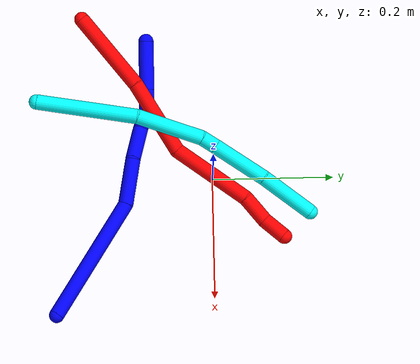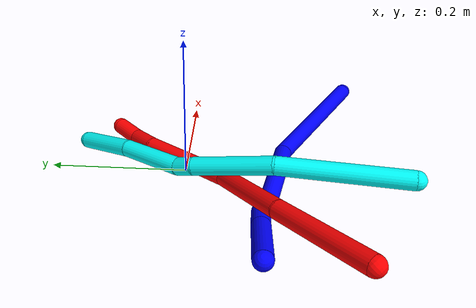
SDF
<sdf version="1.7">
 <world name="default">
  <plugin name="TubeGeneratorPlugin" filename="libtube_generator_plugin.so"/>
  <model name="photoneo_s_sensor">
   <static>1</static>
   <pose>0 0 2 1.57079 1.57079 3.14159</pose>
   <link name="link">
    <inertial><mass>0.1</mass></inertial>
    <sensor name="sensor" type="depth">
     <update_rate>30</update_rate>
     <camera>
      <horizontal_fov>1.22</horizontal_fov>
      <image><width>1920</width><height>1200</height><format>B8G8R8</format></image>
      <clip><near>0.1</near><far>4</far></clip>
      <depth_camera><output>points</output></depth_camera>
     </camera>
     <plugin name="camera_plugin" filename="libgazebo_ros_depth_camera.so">
      <baseline>0.2</baseline>
      <alwaysOn>1</alwaysOn>
      <updateRate>0.0</updateRate>
      <cameraName>camera_ir</cameraName>
      <imageTopicName>/camera/color/image_raw</imageTopicName>
      <cameraInfoTopicName>/camera/color/camera_info</cameraInfoTopicName>
      <depthImageTopicName>/camera/depth/image_raw</depthImageTopicName>
      <depthImageCameraInfoTopicName>/camera/depth/camera_info</depthImageCameraInfoTopicName>
      <pointCloudTopicName>/camera/depth/points</pointCloudTopicName>
      <frameName>fr_optical</frameName>
      <pointCloudCutoff>0.1</pointCloudCutoff>
      <pointCloudCutoffMax>2.0</pointCloudCutoffMax>
      <distortionK1>0</distortionK1>
      <distortionK2>0</distortionK2>
      <distortionK3>0</distortionK3>
      <distortionT1>0</distortionT1>
      <distortionT2>0</distortionT2>
      <CxPrime>0</CxPrime>
      <Cx>0</Cx>
      <Cy>0</Cy>
      <focalLength>0</focalLength>
      <hackBaseline>0</hackBaseline>
     </plugin>
    </sensor>
   </link>
  </model>
  <gravity>0 0 -9.8</gravity>
  <magnetic_field>6e-06 2.3e-05 -4.2e-05</magnetic_field>
  <atmosphere type="adiabatic"/>
  <physics name="default_physics" default="0" type="ode">
   <max_step_size>0.003</max_step_size>
   <real_time_factor>1</real_time_factor>
   <real_time_update_rate>1000</real_time_update_rate>
   <max_contacts>10000</max_contacts>
   <ode>
    <solver>
     <type>quick</type>
     <iters>100</iters>
     <sor>1.3</sor>
     <use_dynamic_moi_rescaling>0</use_dynamic_moi_rescaling>
    </solver>
    <constraints>
     <contact_max_correcting_vel>0</contact_max_correcting_vel>
     <contact_surface_layer>0.001</contact_surface_layer>
     <cfm>0</cfm>
     <erp>0.2</erp>
    </constraints>
   </ode>
  </physics>
  <scene><ambient>0.4 0.4 0.4 1</ambient><background>0.7 0.7 0.7 1</background><shadows>0</shadows></scene>
  <audio><device>default</device></audio>
  <spherical_coordinates>
   <surface_model>EARTH_WGS84</surface_model>
   <latitude_deg>0</latitude_deg>
   <longitude_deg>0</longitude_deg>
   <elevation>0</elevation>
   <heading_deg>0</heading_deg>
  </spherical_coordinates>
  <model name="bin">
   <static>1</static>
   <link name="bottom">
    <collision name="collision-bottom">
     <pose>0 0 -0.01 0 -0 0</pose>
     <geometry><box><size>0.8 0.6 0.02</size></box></geometry>
     <surface>
      <friction><ode><mu>100</mu><mu2>100</mu2></ode></friction>
      <contact><collide_bitmask>65535</collide_bitmask></contact>
     </surface>
    </collision>
   </link>
   <link name="west_wall">
    <collision name="collision-west_wall">
     <pose>-0.41 0 0.1 0 -0 0</pose>
     <geometry><box><size>0.02 0.6 0.2</size></box></geometry>
     <surface>
      <friction><ode><mu>100</mu><mu2>100</mu2></ode></friction>
      <contact><collide_bitmask>65535</collide_bitmask></contact>
     </surface>
    </collision>
   </link>
   <link name="east_wall">
    <collision name="collision-east_wall">
     <pose>0.41 0 0.1 0 -0 0</pose>
     <geometry><box><size>0.02 0.6 0.2</size></box></geometry>
     <surface>
      <friction><ode><mu>100</mu><mu2>100</mu2></ode></friction>
      <contact><collide_bitmask>65535</collide_bitmask></contact>
     </surface>
    </collision>
   </link>
   <link name="south_wall">
    <collision name="collision-south_wall">
     <pose>0 -0.31 0.1 0 -0 0</pose>
     <geometry><box><size>0.8 0.02 0.2</size></box></geometry>
     <surface>
      <friction><ode><mu>100</mu><mu2>100</mu2></ode></friction>
      <contact><collide_bitmask>65535</collide_bitmask></contact>
     </surface>
    </collision>
   </link>
   <link name="north_wall">
    <collision name="collision-north_wall">
     <pose>0 0.31 0.1 0 -0 0</pose>
     <geometry><box><size>0.8 0.02 0.2</size></box></geometry>
     <surface>
      <friction><ode><mu>100</mu><mu2>100</mu2></ode></friction>
      <contact><collide_bitmask>65535</collide_bitmask></contact>
     </surface>
    </collision>
   </link>
  </model>
  <model name="1">
   <static>0</static>
   <link name="1">
    <collision name="collision-cylinder-e_1_1_4">
     <pose>0.029063 -0.004697 0.027217 0.170887 0.810863 0.073492</pose>
     <geometry><cylinder><radius>0.0125</radius><length>0.080186</length></cylinder></geometry>
     <surface>
      <friction><ode><mu>1.16</mu><mu2>1.16</mu2><slip1>0</slip1><slip2>0</slip2></ode></friction>
      <contact><ode><kp>1e+06</kp><kd>1</kd><max_vel>0</max_vel><min_depth>0.001</min_depth></ode></contact>
     </surface>
    </collision>
    <visual name="visual-cylinder-e_1_1_4">
     <pose>0.029063 -0.004697 0.027217 0.170887 0.810863 0.073492</pose>
     <geometry><cylinder><radius>0.0125</radius><length>0.080186</length></cylinder></geometry>
     <material><ambient>0 0 1 1</ambient></material>
    </visual>
    <collision name="collision-cylinder-e_2_4_5">
     <pose>0.072031 -0.011154 0.066682 0.142766 0.84358 0.064149</pose>
     <geometry><cylinder><radius>0.0125</radius><length>0.037228</length></cylinder></geometry>
     <surface>
      <friction><ode><mu>1.16</mu><mu2>1.16</mu2><slip1>0</slip1><slip2>0</slip2></ode></friction>
      <contact><ode><kp>1e+06</kp><kd>1</kd><max_vel>0</max_vel><min_depth>0.001</min_depth></ode></contact>
     </surface>
    </collision>
    <visual name="visual-cylinder-e_2_4_5">
     <pose>0.072031 -0.011154 0.066682 0.142766 0.84358 0.064149</pose>
     <geometry><cylinder><radius>0.0125</radius><length>0.037228</length></cylinder></geometry>
     <material><ambient>0 0 1 1</ambient></material>
    </visual>
    <collision name="collision-cylinder-e_3_5_6">
     <pose>0.097345 -0.00981 0.0874 -0.351387 0.901816 -0.171484</pose>
     <geometry><cylinder><radius>0.0125</radius><length>0.029089</length></cylinder></geometry>
     <surface>
      <friction><ode><mu>1.16</mu><mu2>1.16</mu2><slip1>0</slip1><slip2>0</slip2></ode></friction>
      <contact><ode><kp>1e+06</kp><kd>1</kd><max_vel>0</max_vel><min_depth>0.001</min_depth></ode></contact>
     </surface>
    </collision>
    <visual name="visual-cylinder-e_3_5_6">
     <pose>0.097345 -0.00981 0.0874 -0.351387 0.901816 -0.171484</pose>
     <geometry><cylinder><radius>0.0125</radius><length>0.029089</length></cylinder></geometry>
     <material><ambient>0 0 1 1</ambient></material>
    </visual>
    <collision name="collision-cylinder-e_4_6_7">
     <pose>0.135159 -0.005446 0.105192 -0.13426 1.22851 -0.094761</pose>
     <geometry><cylinder><radius>0.0125</radius><length>0.056061</length></cylinder></geometry>
     <surface>
      <friction><ode><mu>1.16</mu><mu2>1.16</mu2><slip1>0</slip1><slip2>0</slip2></ode></friction>
      <contact><ode><kp>1e+06</kp><kd>1</kd><max_vel>0</max_vel><min_depth>0.001</min_depth></ode></contact>
     </surface>
    </collision>
    <visual name="visual-cylinder-e_4_6_7">
     <pose>0.135159 -0.005446 0.105192 -0.13426 1.22851 -0.094761</pose>
     <geometry><cylinder><radius>0.0125</radius><length>0.056061</length></cylinder></geometry>
     <material><ambient>0 0 1 1</ambient></material>
    </visual>
    <collision name="collision-cylinder-e_5_7_8">
     <pose>0.192784 -0.002941 0.136959 -0.055442 0.946791 -0.028405</pose>
     <geometry><cylinder><radius>0.0125</radius><length>0.076939</length></cylinder></geometry>
     <surface>
      <friction><ode><mu>1.16</mu><mu2>1.16</mu2><slip1>0</slip1><slip2>0</slip2></ode></friction>
      <contact><ode><kp>1e+06</kp><kd>1</kd><max_vel>0</max_vel><min_depth>0.001</min_depth></ode></contact>
     </surface>
    </collision>
    <visual name="visual-cylinder-e_5_7_8">
     <pose>0.192784 -0.002941 0.136959 -0.055442 0.946791 -0.028405</pose>
     <geometry><cylinder><radius>0.0125</radius><length>0.076939</length></cylinder></geometry>
     <material><ambient>0 0 1 1</ambient></material>
    </visual>
    <collision name="collision-cylinder-e_6_8_2">
     <pose>0.321278 0.036975 0.193999 -0.840927 1.08077 -0.524174</pose>
     <geometry><cylinder><radius>0.0125</radius><length>0.220497</length></cylinder></geometry>
     <surface>
      <friction><ode><mu>1.16</mu><mu2>1.16</mu2><slip1>0</slip1><slip2>0</slip2></ode></friction>
      <contact><ode><kp>1e+06</kp><kd>1</kd><max_vel>0</max_vel><min_depth>0.001</min_depth></ode></contact>
     </surface>
    </collision>
    <visual name="visual-cylinder-e_6_8_2">
     <pose>0.321278 0.036975 0.193999 -0.840927 1.08077 -0.524174</pose>
     <geometry><cylinder><radius>0.0125</radius><length>0.220497</length></cylinder></geometry>
     <material><ambient>0 0 1 1</ambient></material>
    </visual>
    <collision name="collision-sphere-2">
     <pose>0.418552 0.075645 0.228597 0 -0 0</pose>
     <geometry><sphere><radius>0.0125</radius></sphere></geometry>
     <surface>
      <friction><ode><mu>1.16</mu><mu2>1.16</mu2><slip1>0</slip1><slip2>0</slip2></ode></friction>
      <contact><ode><kp>1e+06</kp><kd>1</kd><max_vel>0</max_vel><min_depth>0.001</min_depth></ode></contact>
     </surface>
    </collision>
    <visual name="visual-sphere-2">
     <pose>0.418552 0.075645 0.228597 0 -0 0</pose>
     <geometry><sphere><radius>0.0125</radius></sphere></geometry>
     <material><ambient>0 0 1 1</ambient></material>
    </visual>
    <collision name="collision-sphere-4">
     <pose>0.058125 -0.009394 0.054433 0 -0 0</pose>
     <geometry><sphere><radius>0.0125</radius></sphere></geometry>
     <surface>
      <friction><ode><mu>1.16</mu><mu2>1.16</mu2><slip1>0</slip1><slip2>0</slip2></ode></friction>
      <contact><ode><kp>1e+06</kp><kd>1</kd><max_vel>0</max_vel><min_depth>0.001</min_depth></ode></contact>
     </surface>
    </collision>
    <visual name="visual-sphere-4">
     <pose>0.058125 -0.009394 0.054433 0 -0 0</pose>
     <geometry><sphere><radius>0.0125</radius></sphere></geometry>
     <material><ambient>0 0 1 1</ambient></material>
    </visual>
    <collision name="collision-sphere-1">
     <geometry><sphere><radius>0.0125</radius></sphere></geometry>
     <surface>
      <friction><ode><mu>1.16</mu><mu2>1.16</mu2><slip1>0</slip1><slip2>0</slip2></ode></friction>
      <contact><ode><kp>1e+06</kp><kd>1</kd><max_vel>0</max_vel><min_depth>0.001</min_depth></ode></contact>
     </surface>
    </collision>
    <visual name="visual-sphere-1">
     <geometry><sphere><radius>0.0125</radius></sphere></geometry>
     <material><ambient>0 0 1 1</ambient></material>
    </visual>
    <collision name="collision-sphere-8">
     <pose>0.224003 -0.001695 0.159402 0 -0 0</pose>
     <geometry><sphere><radius>0.0125</radius></sphere></geometry>
     <surface>
      <friction><ode><mu>1.16</mu><mu2>1.16</mu2><slip1>0</slip1><slip2>0</slip2></ode></friction>
      <contact><ode><kp>1e+06</kp><kd>1</kd><max_vel>0</max_vel><min_depth>0.001</min_depth></ode></contact>
     </surface>
    </collision>
    <visual name="visual-sphere-8">
     <pose>0.224003 -0.001695 0.159402 0 -0 0</pose>
     <geometry><sphere><radius>0.0125</radius></sphere></geometry>
     <material><ambient>0 0 1 1</ambient></material>
    </visual>
    <collision name="collision-sphere-5">
     <pose>0.085936 -0.012915 0.078931 0 -0 0</pose>
     <geometry><sphere><radius>0.0125</radius></sphere></geometry>
     <surface>
      <friction><ode><mu>1.16</mu><mu2>1.16</mu2><slip1>0</slip1><slip2>0</slip2></ode></friction>
      <contact><ode><kp>1e+06</kp><kd>1</kd><max_vel>0</max_vel><min_depth>0.001</min_depth></ode></contact>
     </surface>
    </collision>
    <visual name="visual-sphere-5">
     <pose>0.085936 -0.012915 0.078931 0 -0 0</pose>
     <geometry><sphere><radius>0.0125</radius></sphere></geometry>
     <material><ambient>0 0 1 1</ambient></material>
    </visual>
    <collision name="collision-sphere-6">
     <pose>0.108755 -0.006705 0.095869 0 -0 0</pose>
     <geometry><sphere><radius>0.0125</radius></sphere></geometry>
     <surface>
      <friction><ode><mu>1.16</mu><mu2>1.16</mu2><slip1>0</slip1><slip2>0</slip2></ode></friction>
      <contact><ode><kp>1e+06</kp><kd>1</kd><max_vel>0</max_vel><min_depth>0.001</min_depth></ode></contact>
     </surface>
    </collision>
    <visual name="visual-sphere-6">
     <pose>0.108755 -0.006705 0.095869 0 -0 0</pose>
     <geometry><sphere><radius>0.0125</radius></sphere></geometry>
     <material><ambient>0 0 1 1</ambient></material>
    </visual>
    <collision name="collision-sphere-7">
     <pose>0.161564 -0.004187 0.114516 0 -0 0</pose>
     <geometry><sphere><radius>0.0125</radius></sphere></geometry>
     <surface>
      <friction><ode><mu>1.16</mu><mu2>1.16</mu2><slip1>0</slip1><slip2>0</slip2></ode></friction>
      <contact><ode><kp>1e+06</kp><kd>1</kd><max_vel>0</max_vel><min_depth>0.001</min_depth></ode></contact>
     </surface>
    </collision>
    <visual name="visual-sphere-7">
     <pose>0.161564 -0.004187 0.114516 0 -0 0</pose>
     <geometry><sphere><radius>0.0125</radius></sphere></geometry>
     <material><ambient>0 0 1 1</ambient></material>
    </visual>
    <inertial>
     <pose>0.202188 0.013088 0.132836 0 -0 0</pose>
     <mass>0.5</mass>
     <inertia>
      <ixx>0.000256</ixx>
      <ixy>0</ixy>
      <ixz>0</ixz>
      <iyy>0.000724</iyy>
      <iyz>0</iyz>
      <izz>-0.001181</izz>
     </inertia>
    </inertial>
   </link>
   <pose>-0.229422 -0.106644 0.039098 -2.92753 -0.508692 -0.269965</pose>
  </model>
  <model name="2">
   <static>0</static>
   <link name="2">
    <collision name="collision-cylinder-e_1_1_4">
     <pose>0.022803 0.039841 0.052794 -0.64647 0.332009 -0.112133</pose>
     <geometry><cylinder><radius>0.0125</radius><length>0.139921</length></cylinder></geometry>
     <surface>
      <friction><ode><mu>1.16</mu><mu2>1.16</mu2><slip1>0</slip1><slip2>0</slip2></ode></friction>
      <contact><ode><kp>1e+06</kp><kd>1</kd><max_vel>0</max_vel><min_depth>0.001</min_depth></ode></contact>
     </surface>
    </collision>
    <visual name="visual-cylinder-e_1_1_4">
     <pose>0.022803 0.039841 0.052794 -0.64647 0.332009 -0.112133</pose>
     <geometry><cylinder><radius>0.0125</radius><length>0.139921</length></cylinder></geometry>
     <material><ambient>1 0 0 1</ambient></material>
    </visual>
    <collision name="collision-cylinder-e_2_4_5">
     <pose>0.074548 0.119116 0.148393 -0.744434 0.461458 -0.182915</pose>
     <geometry><cylinder><radius>0.0125</radius><length>0.13</length></cylinder></geometry>
     <surface>
      <friction><ode><mu>1.16</mu><mu2>1.16</mu2><slip1>0</slip1><slip2>0</slip2></ode></friction>
      <contact><ode><kp>1e+06</kp><kd>1</kd><max_vel>0</max_vel><min_depth>0.001</min_depth></ode></contact>
     </surface>
    </collision>
    <visual name="visual-cylinder-e_2_4_5">
     <pose>0.074548 0.119116 0.148393 -0.744434 0.461458 -0.182915</pose>
     <geometry><cylinder><radius>0.0125</radius><length>0.13</length></cylinder></geometry>
     <material><ambient>1 0 0 1</ambient></material>
    </visual>
    <collision name="collision-cylinder-e_3_5_6">
     <pose>0.108117 0.195375 0.249964 -0.559766 0.066635 -0.019159</pose>
     <geometry><cylinder><radius>0.0125</radius><length>0.139009</length></cylinder></geometry>
     <surface>
      <friction><ode><mu>1.16</mu><mu2>1.16</mu2><slip1>0</slip1><slip2>0</slip2></ode></friction>
      <contact><ode><kp>1e+06</kp><kd>1</kd><max_vel>0</max_vel><min_depth>0.001</min_depth></ode></contact>
     </surface>
    </collision>
    <visual name="visual-cylinder-e_3_5_6">
     <pose>0.108117 0.195375 0.249964 -0.559766 0.066635 -0.019159</pose>
     <geometry><cylinder><radius>0.0125</radius><length>0.139009</length></cylinder></geometry>
     <material><ambient>1 0 0 1</ambient></material>
    </visual>
    <collision name="collision-cylinder-e_4_6_7">
     <pose>0.120378 0.246282 0.326924 -0.658744 0.320315 -0.110325</pose>
     <geometry><cylinder><radius>0.0125</radius><length>0.048482</length></cylinder></geometry>
     <surface>
      <friction><ode><mu>1.16</mu><mu2>1.16</mu2><slip1>0</slip1><slip2>0</slip2></ode></friction>
      <contact><ode><kp>1e+06</kp><kd>1</kd><max_vel>0</max_vel><min_depth>0.001</min_depth></ode></contact>
     </surface>
    </collision>
    <visual name="visual-cylinder-e_4_6_7">
     <pose>0.120378 0.246282 0.326924 -0.658744 0.320315 -0.110325</pose>
     <geometry><cylinder><radius>0.0125</radius><length>0.048482</length></cylinder></geometry>
     <material><ambient>1 0 0 1</ambient></material>
    </visual>
    <collision name="collision-cylinder-e_5_7_2">
     <pose>0.13113 0.269136 0.36427 -0.429405 0.147051 -0.032122</pose>
     <geometry><cylinder><radius>0.0125</radius><length>0.042589</length></cylinder></geometry>
     <surface>
      <friction><ode><mu>1.16</mu><mu2>1.16</mu2><slip1>0</slip1><slip2>0</slip2></ode></friction>
      <contact><ode><kp>1e+06</kp><kd>1</kd><max_vel>0</max_vel><min_depth>0.001</min_depth></ode></contact>
     </surface>
    </collision>
    <visual name="visual-cylinder-e_5_7_2">
     <pose>0.13113 0.269136 0.36427 -0.429405 0.147051 -0.032122</pose>
     <geometry><cylinder><radius>0.0125</radius><length>0.042589</length></cylinder></geometry>
     <material><ambient>1 0 0 1</ambient></material>
    </visual>
    <collision name="collision-sphere-2">
     <pose>0.13425 0.277906 0.383422 0 -0 0</pose>
     <geometry><sphere><radius>0.0125</radius></sphere></geometry>
     <surface>
      <friction><ode><mu>1.16</mu><mu2>1.16</mu2><slip1>0</slip1><slip2>0</slip2></ode></friction>
      <contact><ode><kp>1e+06</kp><kd>1</kd><max_vel>0</max_vel><min_depth>0.001</min_depth></ode></contact>
     </surface>
    </collision>
    <visual name="visual-sphere-2">
     <pose>0.13425 0.277906 0.383422 0 -0 0</pose>
     <geometry><sphere><radius>0.0125</radius></sphere></geometry>
     <material><ambient>1 0 0 1</ambient></material>
    </visual>
    <collision name="collision-sphere-7">
     <pose>0.12801 0.260366 0.345117 0 -0 0</pose>
     <geometry><sphere><radius>0.0125</radius></sphere></geometry>
     <surface>
      <friction><ode><mu>1.16</mu><mu2>1.16</mu2><slip1>0</slip1><slip2>0</slip2></ode></friction>
      <contact><ode><kp>1e+06</kp><kd>1</kd><max_vel>0</max_vel><min_depth>0.001</min_depth></ode></contact>
     </surface>
    </collision>
    <visual name="visual-sphere-7">
     <pose>0.12801 0.260366 0.345117 0 -0 0</pose>
     <geometry><sphere><radius>0.0125</radius></sphere></geometry>
     <material><ambient>1 0 0 1</ambient></material>
    </visual>
    <collision name="collision-sphere-6">
     <pose>0.112745 0.232199 0.30873 0 -0 0</pose>
     <geometry><sphere><radius>0.0125</radius></sphere></geometry>
     <surface>
      <friction><ode><mu>1.16</mu><mu2>1.16</mu2><slip1>0</slip1><slip2>0</slip2></ode></friction>
      <contact><ode><kp>1e+06</kp><kd>1</kd><max_vel>0</max_vel><min_depth>0.001</min_depth></ode></contact>
     </surface>
    </collision>
    <visual name="visual-sphere-6">
     <pose>0.112745 0.232199 0.30873 0 -0 0</pose>
     <geometry><sphere><radius>0.0125</radius></sphere></geometry>
     <material><ambient>1 0 0 1</ambient></material>
    </visual>
    <collision name="collision-sphere-5">
     <pose>0.103489 0.158551 0.191198 0 -0 0</pose>
     <geometry><sphere><radius>0.0125</radius></sphere></geometry>
     <surface>
      <friction><ode><mu>1.16</mu><mu2>1.16</mu2><slip1>0</slip1><slip2>0</slip2></ode></friction>
      <contact><ode><kp>1e+06</kp><kd>1</kd><max_vel>0</max_vel><min_depth>0.001</min_depth></ode></contact>
     </surface>
    </collision>
    <visual name="visual-sphere-5">
     <pose>0.103489 0.158551 0.191198 0 -0 0</pose>
     <geometry><sphere><radius>0.0125</radius></sphere></geometry>
     <material><ambient>1 0 0 1</ambient></material>
    </visual>
    <collision name="collision-sphere-1">
     <geometry><sphere><radius>0.0125</radius></sphere></geometry>
     <surface>
      <friction><ode><mu>1.16</mu><mu2>1.16</mu2><slip1>0</slip1><slip2>0</slip2></ode></friction>
      <contact><ode><kp>1e+06</kp><kd>1</kd><max_vel>0</max_vel><min_depth>0.001</min_depth></ode></contact>
     </surface>
    </collision>
    <visual name="visual-sphere-1">
     <geometry><sphere><radius>0.0125</radius></sphere></geometry>
     <material><ambient>1 0 0 1</ambient></material>
    </visual>
    <collision name="collision-sphere-4">
     <pose>0.045606 0.079682 0.105588 0 -0 0</pose>
     <geometry><sphere><radius>0.0125</radius></sphere></geometry>
     <surface>
      <friction><ode><mu>1.16</mu><mu2>1.16</mu2><slip1>0</slip1><slip2>0</slip2></ode></friction>
      <contact><ode><kp>1e+06</kp><kd>1</kd><max_vel>0</max_vel><min_depth>0.001</min_depth></ode></contact>
     </surface>
    </collision>
    <visual name="visual-sphere-4">
     <pose>0.045606 0.079682 0.105588 0 -0 0</pose>
     <geometry><sphere><radius>0.0125</radius></sphere></geometry>
     <material><ambient>1 0 0 1</ambient></material>
    </visual>
    <inertial>
     <pose>0.078664 0.143242 0.185578 0 -0 0</pose>
     <mass>0.5</mass>
     <inertia>
      <ixx>0.000582</ixx>
      <ixy>0</ixy>
      <ixz>0</ixz>
      <iyy>0.000508</iyy>
      <iyz>0</iyz>
      <izz>-0.000529</izz>
     </inertia>
    </inertial>
   </link>
   <pose>-0.261651 -0.212021 0.06788 -1.0186 0.117642 -0.567809</pose>
  </model>
  <model name="3">
   <static>0</static>
   <link name="3">
    <collision name="collision-cylinder-e_1_1_4">
     <pose>-0.007499 -0.039286 -0.025704 2.15017 -0.158385 -0.291436</pose>
     <geometry><cylinder><radius>0.0125</radius><length>0.095086</length></cylinder></geometry>
     <surface>
      <friction><ode><mu>1.16</mu><mu2>1.16</mu2><slip1>0</slip1><slip2>0</slip2></ode></friction>
      <contact><ode><kp>1e+06</kp><kd>1</kd><max_vel>0</max_vel><min_depth>0.001</min_depth></ode></contact>
     </surface>
    </collision>
    <visual name="visual-cylinder-e_1_1_4">
     <pose>-0.007499 -0.039286 -0.025704 2.15017 -0.158385 -0.291436</pose>
     <geometry><cylinder><radius>0.0125</radius><length>0.095086</length></cylinder></geometry>
     <material><ambient>0.003922 1 0.996078 1</ambient></material>
    </visual>
    <collision name="collision-cylinder-e_2_4_5">
     <pose>-0.021337 -0.12193 -0.071508 2.00489 -0.131884 -0.206073</pose>
     <geometry><cylinder><radius>0.0125</radius><length>0.096418</length></cylinder></geometry>
     <surface>
      <friction><ode><mu>1.16</mu><mu2>1.16</mu2><slip1>0</slip1><slip2>0</slip2></ode></friction>
      <contact><ode><kp>1e+06</kp><kd>1</kd><max_vel>0</max_vel><min_depth>0.001</min_depth></ode></contact>
     </surface>
    </collision>
    <visual name="visual-cylinder-e_2_4_5">
     <pose>-0.021337 -0.12193 -0.071508 2.00489 -0.131884 -0.206073</pose>
     <geometry><cylinder><radius>0.0125</radius><length>0.096418</length></cylinder></geometry>
     <material><ambient>0.003922 1 0.996078 1</ambient></material>
    </visual>
    <collision name="collision-cylinder-e_3_5_6">
     <pose>-0.031881 -0.175548 -0.099844 2.24715 -0.309342 -0.628597</pose>
     <geometry><cylinder><radius>0.0125</radius><length>0.027626</length></cylinder></geometry>
     <surface>
      <friction><ode><mu>1.16</mu><mu2>1.16</mu2><slip1>0</slip1><slip2>0</slip2></ode></friction>
      <contact><ode><kp>1e+06</kp><kd>1</kd><max_vel>0</max_vel><min_depth>0.001</min_depth></ode></contact>
     </surface>
    </collision>
    <visual name="visual-cylinder-e_3_5_6">
     <pose>-0.031881 -0.175548 -0.099844 2.24715 -0.309342 -0.628597</pose>
     <geometry><cylinder><radius>0.0125</radius><length>0.027626</length></cylinder></geometry>
     <material><ambient>0.003922 1 0.996078 1</ambient></material>
    </visual>
    <collision name="collision-cylinder-e_4_6_7">
     <pose>-0.061632 -0.230644 -0.131209 2.04707 -0.468724 -0.746859</pose>
     <geometry><cylinder><radius>0.0125</radius><length>0.113097</length></cylinder></geometry>
     <surface>
      <friction><ode><mu>1.16</mu><mu2>1.16</mu2><slip1>0</slip1><slip2>0</slip2></ode></friction>
      <contact><ode><kp>1e+06</kp><kd>1</kd><max_vel>0</max_vel><min_depth>0.001</min_depth></ode></contact>
     </surface>
    </collision>
    <visual name="visual-cylinder-e_4_6_7">
     <pose>-0.061632 -0.230644 -0.131209 2.04707 -0.468724 -0.746859</pose>
     <geometry><cylinder><radius>0.0125</radius><length>0.113097</length></cylinder></geometry>
     <material><ambient>0.003922 1 0.996078 1</ambient></material>
    </visual>
    <collision name="collision-cylinder-e_5_7_2">
     <pose>-0.12778 -0.347449 -0.168791 1.76896 -0.50523 -0.610531</pose>
     <geometry><cylinder><radius>0.0125</radius><length>0.167774</length></cylinder></geometry>
     <surface>
      <friction><ode><mu>1.16</mu><mu2>1.16</mu2><slip1>0</slip1><slip2>0</slip2></ode></friction>
      <contact><ode><kp>1e+06</kp><kd>1</kd><max_vel>0</max_vel><min_depth>0.001</min_depth></ode></contact>
     </surface>
    </collision>
    <visual name="visual-cylinder-e_5_7_2">
     <pose>-0.12778 -0.347449 -0.168791 1.76896 -0.50523 -0.610531</pose>
     <geometry><cylinder><radius>0.0125</radius><length>0.167774</length></cylinder></geometry>
     <material><ambient>0.003922 1 0.996078 1</ambient></material>
    </visual>
    <collision name="collision-sphere-2">
     <pose>-0.168382 -0.419419 -0.183243 0 -0 0</pose>
     <geometry><sphere><radius>0.0125</radius></sphere></geometry>
     <surface>
      <friction><ode><mu>1.16</mu><mu2>1.16</mu2><slip1>0</slip1><slip2>0</slip2></ode></friction>
      <contact><ode><kp>1e+06</kp><kd>1</kd><max_vel>0</max_vel><min_depth>0.001</min_depth></ode></contact>
     </surface>
    </collision>
    <visual name="visual-sphere-2">
     <pose>-0.168382 -0.419419 -0.183243 0 -0 0</pose>
     <geometry><sphere><radius>0.0125</radius></sphere></geometry>
     <material><ambient>0.003922 1 0.996078 1</ambient></material>
    </visual>
    <collision name="collision-sphere-7">
     <pose>-0.087178 -0.275479 -0.154339 0 -0 0</pose>
     <geometry><sphere><radius>0.0125</radius></sphere></geometry>
     <surface>
      <friction><ode><mu>1.16</mu><mu2>1.16</mu2><slip1>0</slip1><slip2>0</slip2></ode></friction>
      <contact><ode><kp>1e+06</kp><kd>1</kd><max_vel>0</max_vel><min_depth>0.001</min_depth></ode></contact>
     </surface>
    </collision>
    <visual name="visual-sphere-7">
     <pose>-0.087178 -0.275479 -0.154339 0 -0 0</pose>
     <geometry><sphere><radius>0.0125</radius></sphere></geometry>
     <material><ambient>0.003922 1 0.996078 1</ambient></material>
    </visual>
    <collision name="collision-sphere-6">
     <pose>-0.036087 -0.185809 -0.10808 0 -0 0</pose>
     <geometry><sphere><radius>0.0125</radius></sphere></geometry>
     <surface>
      <friction><ode><mu>1.16</mu><mu2>1.16</mu2><slip1>0</slip1><slip2>0</slip2></ode></friction>
      <contact><ode><kp>1e+06</kp><kd>1</kd><max_vel>0</max_vel><min_depth>0.001</min_depth></ode></contact>
     </surface>
    </collision>
    <visual name="visual-sphere-6">
     <pose>-0.036087 -0.185809 -0.10808 0 -0 0</pose>
     <geometry><sphere><radius>0.0125</radius></sphere></geometry>
     <material><ambient>0.003922 1 0.996078 1</ambient></material>
    </visual>
    <collision name="collision-sphere-5">
     <pose>-0.027676 -0.165288 -0.091608 0 -0 0</pose>
     <geometry><sphere><radius>0.0125</radius></sphere></geometry>
     <surface>
      <friction><ode><mu>1.16</mu><mu2>1.16</mu2><slip1>0</slip1><slip2>0</slip2></ode></friction>
      <contact><ode><kp>1e+06</kp><kd>1</kd><max_vel>0</max_vel><min_depth>0.001</min_depth></ode></contact>
     </surface>
    </collision>
    <visual name="visual-sphere-5">
     <pose>-0.027676 -0.165288 -0.091608 0 -0 0</pose>
     <geometry><sphere><radius>0.0125</radius></sphere></geometry>
     <material><ambient>0.003922 1 0.996078 1</ambient></material>
    </visual>
    <collision name="collision-sphere-1">
     <geometry><sphere><radius>0.0125</radius></sphere></geometry>
     <surface>
      <friction><ode><mu>1.16</mu><mu2>1.16</mu2><slip1>0</slip1><slip2>0</slip2></ode></friction>
      <contact><ode><kp>1e+06</kp><kd>1</kd><max_vel>0</max_vel><min_depth>0.001</min_depth></ode></contact>
     </surface>
    </collision>
    <visual name="visual-sphere-1">
     <geometry><sphere><radius>0.0125</radius></sphere></geometry>
     <material><ambient>0.003922 1 0.996078 1</ambient></material>
    </visual>
    <collision name="collision-sphere-4">
     <pose>-0.014997 -0.078572 -0.051408 0 -0 0</pose>
     <geometry><sphere><radius>0.0125</radius></sphere></geometry>
     <surface>
      <friction><ode><mu>1.16</mu><mu2>1.16</mu2><slip1>0</slip1><slip2>0</slip2></ode></friction>
      <contact><ode><kp>1e+06</kp><kd>1</kd><max_vel>0</max_vel><min_depth>0.001</min_depth></ode></contact>
     </surface>
    </collision>
    <visual name="visual-sphere-4">
     <pose>-0.014997 -0.078572 -0.051408 0 -0 0</pose>
     <geometry><sphere><radius>0.0125</radius></sphere></geometry>
     <material><ambient>0.003922 1 0.996078 1</ambient></material>
    </visual>
    <inertial>
     <pose>-0.064119 -0.209439 -0.11051 0 -0 0</pose>
     <mass>0.5</mass>
     <inertia>
      <ixx>0.00019</ixx>
      <ixy>0</ixy>
      <ixz>0</ixz>
      <iyy>-0.00038</iyy>
      <iyz>0</iyz>
      <izz>0.000836</izz>
     </inertia>
    </inertial>
   </link>
   <pose>0.05987 0.160491 0.011943 2.71676 0.425274 2.43128</pose>
  </model>
 </world>
</sdf>
